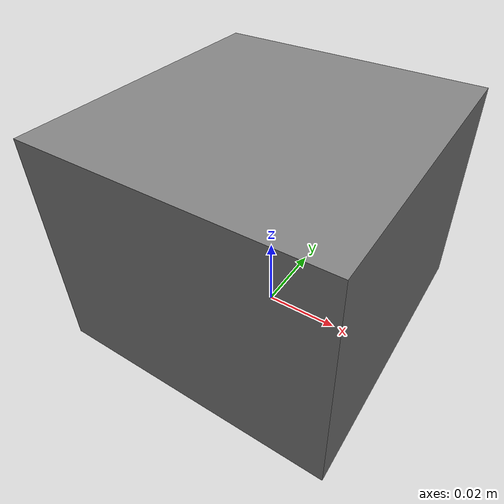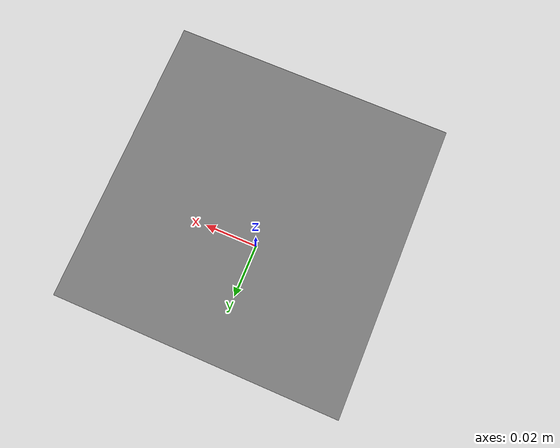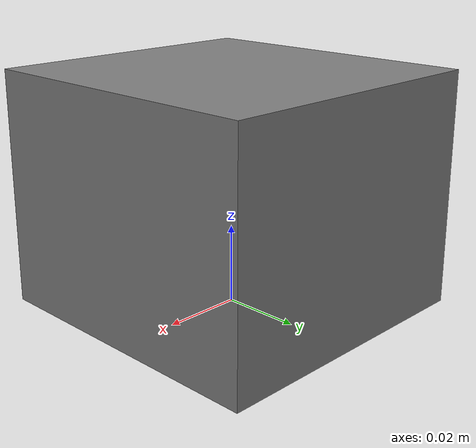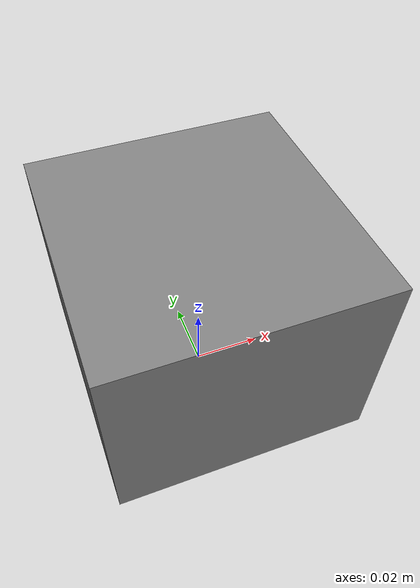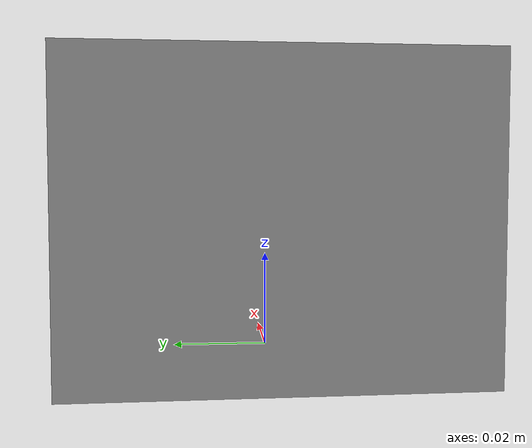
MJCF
<mujoco model="rubik_cube">
  <asset>
    <material name="rubik_cube_mat" rgba="0.1 0.1 0.1 1" specular="0.3" shininess="0.1"/>
    <mesh name="rubik_cube_vis" file="rubik_cube_libero.obj" scale="1 1 1"/>
  </asset>
  <worldbody>
    <body>
      <body name="object">
        <geom type="mesh" mesh="rubik_cube_vis" material="rubik_cube_mat" group="1" contype="0" conaffinity="0"/>
        <geom name="rubik_cube_collision" type="box" size="0.03703 0.03818 0.02950" pos="0 0 0.02950" group="0" density="100" friction="0.95 0.3 0.1" solimp="0.998 0.998 0.001" solref="0.001 1"/>
      </body>
      <site rgba="0 0 0 0" size="0.005" pos="0 0 0" name="bottom_site"/>
      <site rgba="0 0 0 0" size="0.005" pos="0 0 0.05900" name="top_site"/>
      <site rgba="0 0 0 0" size="0.005" pos="0.03818 0 0" name="horizontal_radius_site"/>
    </body>
  </worldbody>
</mujoco>
